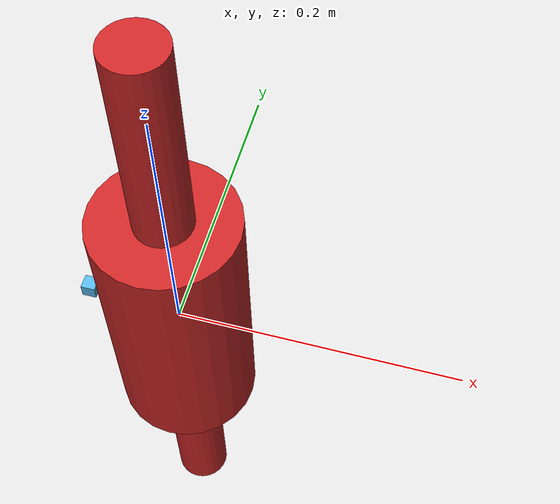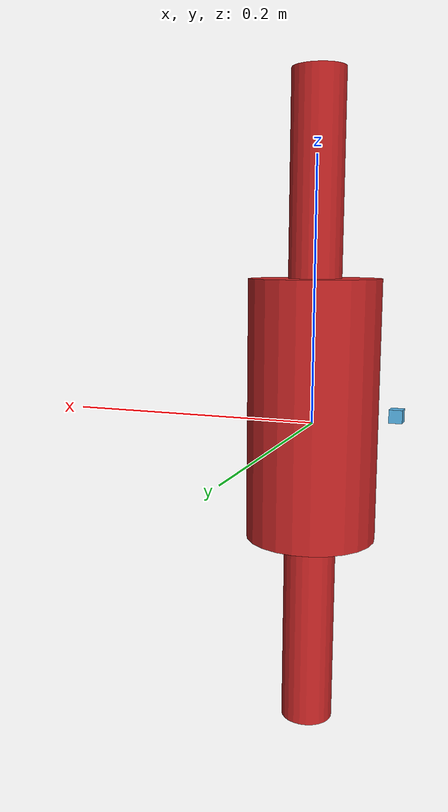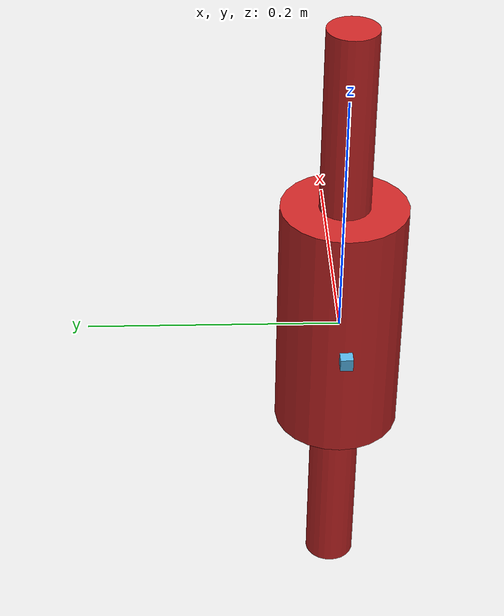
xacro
<?xml version="1.0" ?>
<robot name="push_robot" xmlns:xacro="http://ros.org/wiki/xacro">
  <xacro:include filename="$(find ssabot)/urdf/common_properties.xacro"/>

  <link name="base_footprint"/>

  <joint name="base_joint" type="fixed">
    <parent link="base_footprint"/>
    <child link="base_link" />
    <origin xyz="0 0 0.010" rpy="0 0 0"/>
  </joint>

    <link name="base_link">
      <visual>
        <origin xyz="-0.064 0 0.0" rpy="0 0 0"/>
        <geometry>
          <box size="0.01 0.01 0.01"/>
        </geometry>
      </visual>

      <collision>
        <geometry>
          <box size="0.01 0.01 0.01"/>
        </geometry>
      </collision>
    </link>

  <joint name="joint1" type="prismatic">
    <parent link="base_link"/>
    <child link="virtual_link"/>
    <origin xyz="0 0 0" rpy="0 0 0"/>
    <axis xyz="0 1 0"/>
    <limit effort="30" lower="-1" upper="1" velocity="0.1"/>
  </joint>

  <link name="virtual_link">
    <visual>
	    <origin xyz="0 0 0" rpy="0 0 0"/>
      <geometry>
        <cylinder length="0.2" radius="0.05"/>
      </geometry>
      <material name="red"/>
    </visual>
  </link>

  <joint name="joint2" type="prismatic">
    <parent link="virtual_link"/>
    <child link="piston1"/>
    <origin xyz="0 0 0" rpy="0 0 0"/>
    <axis xyz="0 0 1"/>
    <limit effort="30" lower="-1" upper="1" velocity="0.1"/>
  </joint>

  <link name="piston1">
    <visual>
	    <origin xyz="0 0 0" rpy="0 0 0"/>
      <geometry>
        <cylinder length="0.5" radius="0.02"/>
      </geometry>
      <material name="red"/>
    </visual>
  </link>

  <joint name="joint3" type="prismatic">
    <parent link="piston1"/>
    <child link="piston2"/>
    <origin xyz="0 0 0" rpy="0 0 0"/>
    <axis xyz="1 0 0"/>
    <limit effort="30" lower="-1" upper="1" velocity="0.1"/>
  </joint>

  <link name="piston2">
    <visual>
	    <origin xyz="0 0 0" rpy="0 0 0"/>
      <geometry>
        <cylinder length="0.2" radius="0.05"/>
      </geometry>
      <material name="red"/>
    </visual>
  </link>

</robot>
